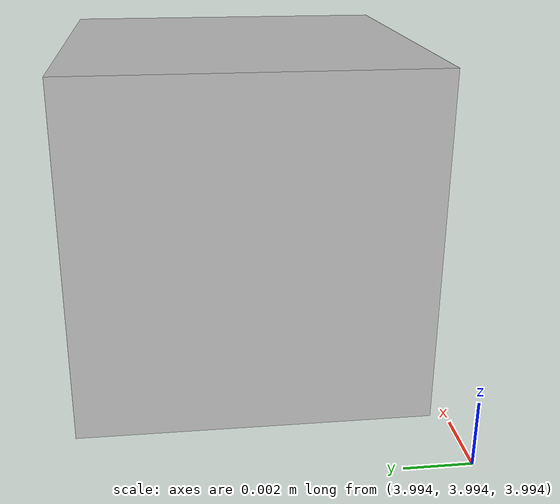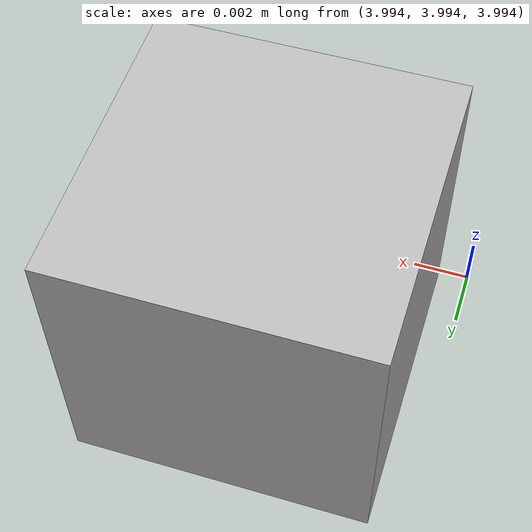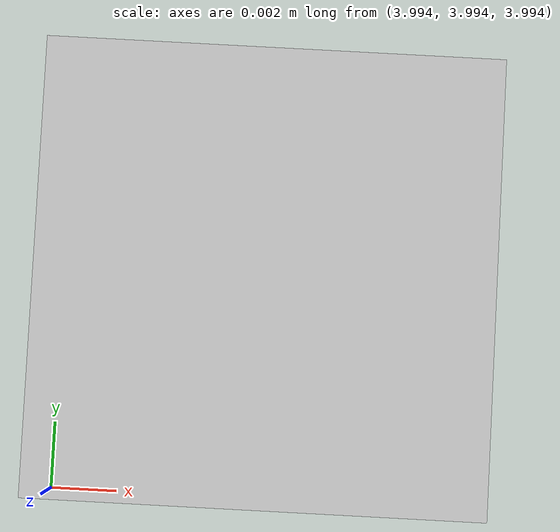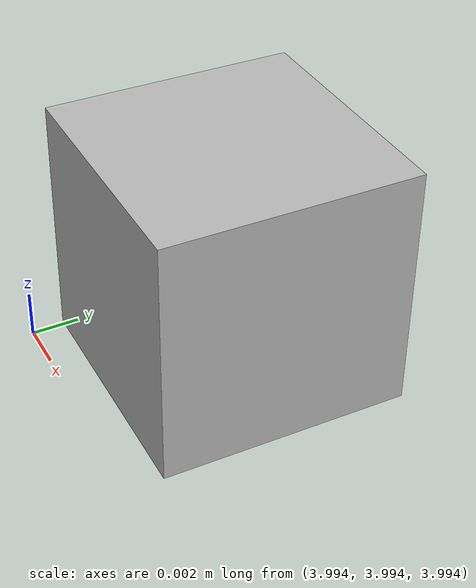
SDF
<sdf version="1.4">
    <world name="default">
      <include>
        <uri>model://sun</uri>
      </include>
      <include>
        <uri>model://ground_plane</uri>
      </include>
    <model name="box">
      <pose>4 4 4 0 0 0</pose>
      <link name="link">
        <collision name="collision">
          <geometry>
            <box>
              <size>0.01 0.01 0.01</size>
            </box>
          </geometry>
        </collision>

        <visual name="visual">
          <geometry>
            <box>
              <size>0.01 0.01 0.01</size>
            </box>
          </geometry>
	  <plugin name="ivr_ambient" filename="libivr_ambient.so"/>
	</visual>
      </link>
    </model>
    </world>
</sdf>
